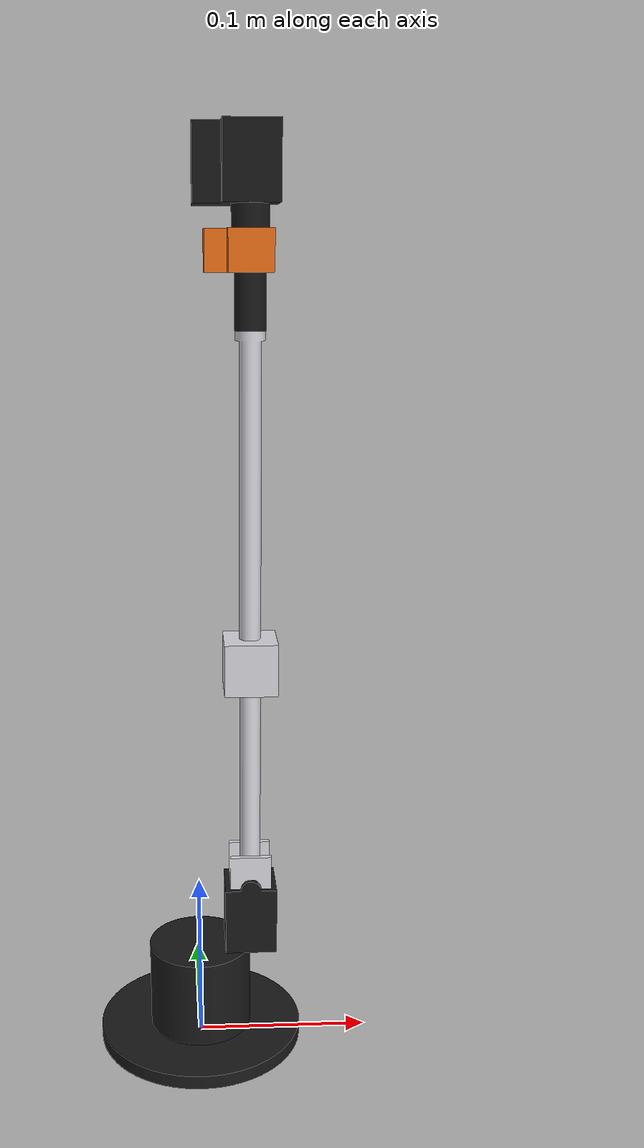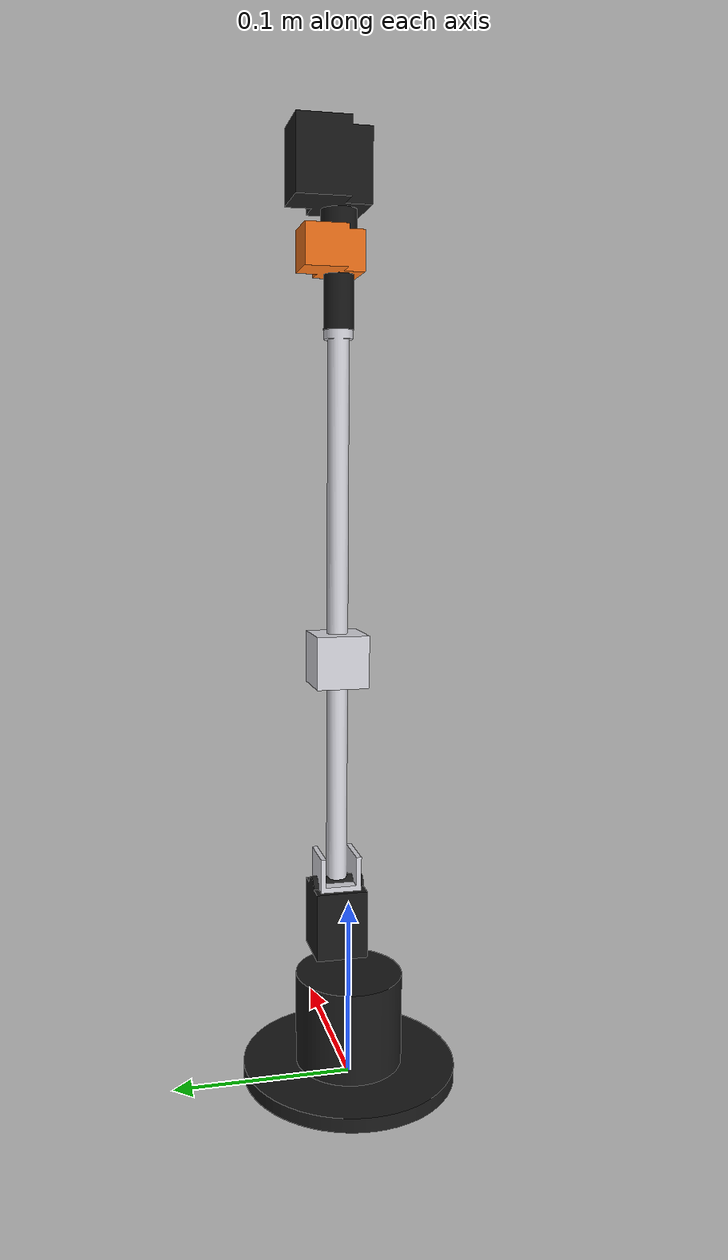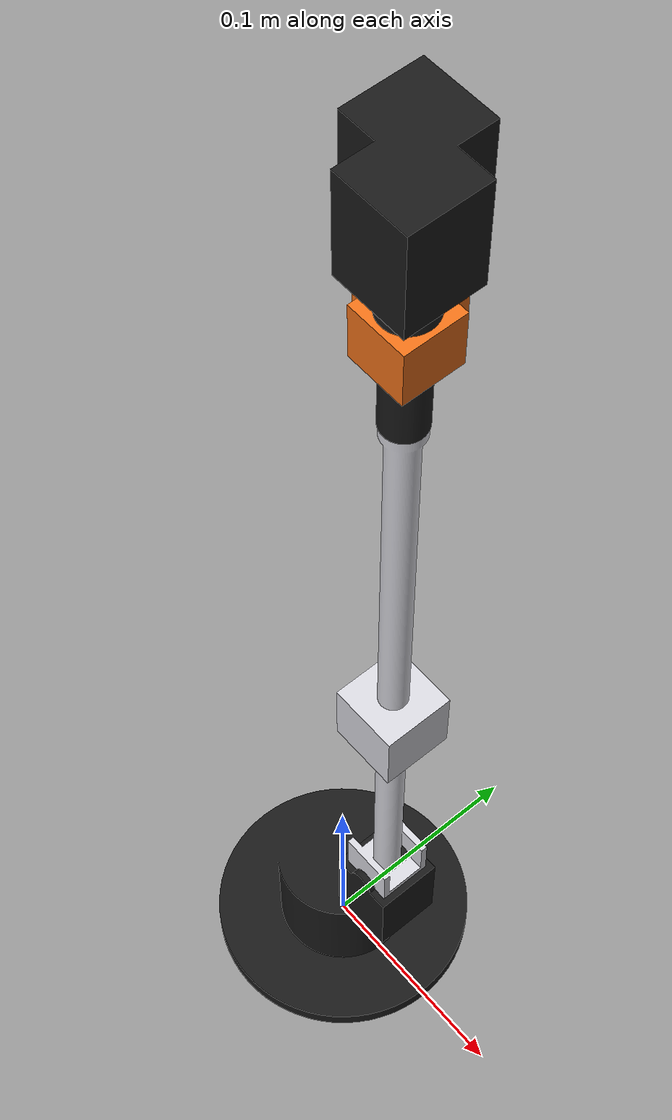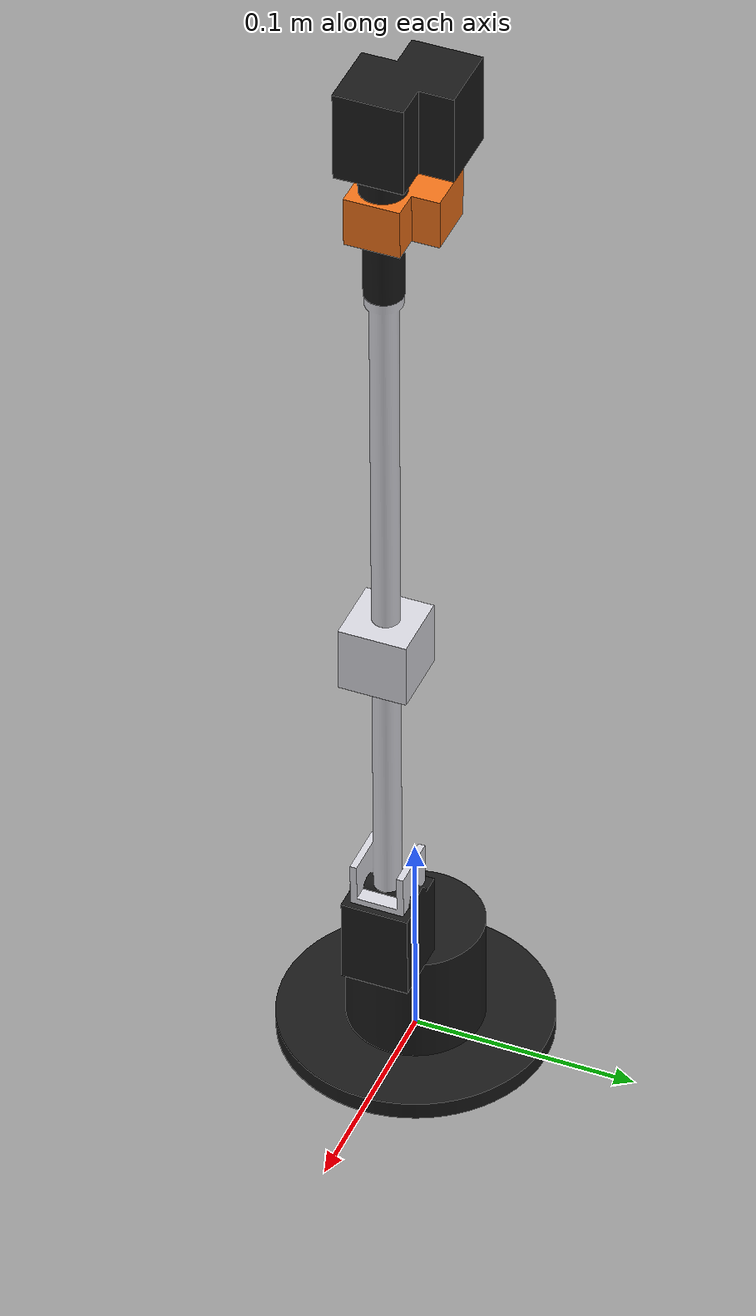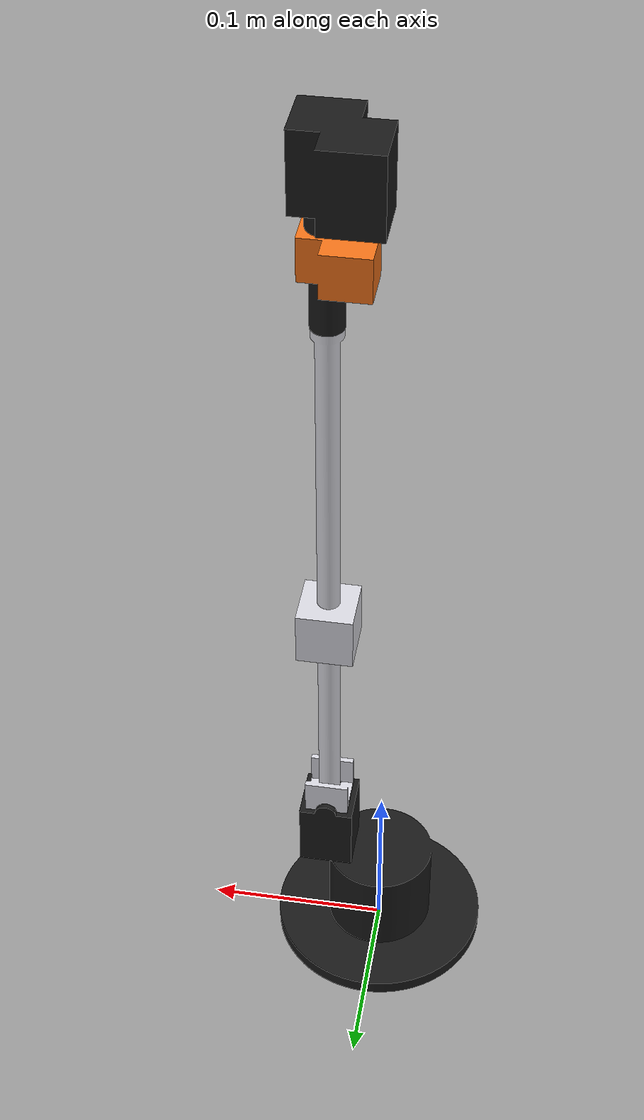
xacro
<?xml version="1.0"?>
<robot xmlns:xacro="http://www.ros.org/wiki/xacro" name="sevenbot">

  <!-- ====== AFMETINGEN (m, kg) — uit Arm7Bot.h ====== -->
  <xacro:property name="L_a"       value="0.120"/>   <!-- upper arm -->
  <xacro:property name="L_b"       value="0.040"/>   <!-- shoulder offset -->
  <xacro:property name="L_c"       value="0.1985"/>  <!-- forearm -->
  <xacro:property name="L_d"       value="0.03005"/> <!-- base radial offset -->
  <xacro:property name="L_e"       value="0.0778"/>
  <xacro:property name="L_f"       value="0.0221"/>  <!-- wrist length -->
  <xacro:property name="L_g"       value="0.012"/>   <!-- ee offset -->
  <xacro:property name="L_h"       value="0.02942"/> <!-- elbow offset -->

  <xacro:property name="base_h"    value="0.06"/>    <!-- gemeten basis hoogte (schat) -->
  <xacro:property name="base_r"    value="0.06"/>

  <xacro:property name="link_r"    value="0.012"/>   <!-- aluminium buisjes ~24mm OD -->

  <xacro:property name="m_base"    value="0.6"/>
  <xacro:property name="m_link"    value="0.15"/>
  <xacro:property name="m_wrist"   value="0.08"/>
  <xacro:property name="m_ee"      value="0.05"/>

  <xacro:property name="effort"    value="3.0"/>     <!-- digitale servo, ~3 Nm peak -->
  <xacro:property name="vel_lim"   value="3.5"/>     <!-- ~200 deg/s servo speed -->

  <!-- ====== HELPERS ====== -->
  <xacro:macro name="cyl_inertial" params="m r h">
    <inertial>
      <mass value="${m}"/>
      <inertia
        ixx="${m * (3*r*r + h*h) / 12}" iyy="${m * (3*r*r + h*h) / 12}"
        izz="${m * r*r / 2}"
        ixy="0" ixz="0" iyz="0"/>
    </inertial>
  </xacro:macro>

  <material name="alu">    <color rgba="0.85 0.85 0.88 1"/></material>
  <material name="black">  <color rgba="0.10 0.10 0.10 1"/></material>
  <material name="orange"> <color rgba="0.95 0.45 0.10 1"/></material>

  <!-- ====== WORLD anchor ====== -->
  <link name="world"/>

  <!-- Mesh helper: STL paths uit sevenbot_description/meshes/ -->
  <xacro:macro name="link_mesh" params="name color_name">
    <visual>
      <geometry><mesh filename="package://sevenbot_description/meshes/${name}_link.stl" scale="0.001 0.001 0.001"/></geometry>
      <material name="${color_name}"/>
    </visual>
    <collision>
      <geometry><mesh filename="package://sevenbot_description/meshes/${name}_link.stl" scale="0.001 0.001 0.001"/></geometry>
    </collision>
  </xacro:macro>

  <!-- ====== BASE ====== -->
  <link name="base_link">
    <xacro:link_mesh name="base" color_name="black"/>
    <xacro:cyl_inertial m="${m_base}" r="${base_r}" h="${base_h}"/>
  </link>
  <joint name="world_to_base" type="fixed">
    <parent link="world"/><child link="base_link"/>
  </joint>

  <!-- ====== JOINT 0: base yaw (servo 0) ====== -->
  <link name="shoulder_link">
    <xacro:link_mesh name="shoulder" color_name="black"/>
    <xacro:cyl_inertial m="${m_link/2}" r="${link_r}" h="${L_b}"/>
  </link>
  <joint name="joint_0" type="revolute">
    <parent link="base_link"/><child link="shoulder_link"/>
    <origin xyz="${L_d} 0 ${base_h}" rpy="0 0 0"/>
    <axis xyz="0 0 1"/>
    <limit lower="0" upper="${pi}" effort="${effort}" velocity="${vel_lim}"/>
    <dynamics damping="0.05"/>
  </joint>

  <!-- ====== JOINT 1: shoulder pitch (servo 1) ====== -->
  <link name="upper_arm_link">
    <xacro:link_mesh name="upper_arm" color_name="alu"/>
    <xacro:cyl_inertial m="${m_link}" r="${link_r}" h="${L_a}"/>
  </link>
  <joint name="joint_1" type="revolute">
    <parent link="shoulder_link"/><child link="upper_arm_link"/>
    <origin xyz="0 0 ${L_b}" rpy="0 0 0"/>
    <axis xyz="0 1 0"/>
    <limit lower="0" upper="${pi}" effort="${effort}" velocity="${vel_lim}"/>
    <dynamics damping="0.1"/>
  </joint>

  <!-- ====== JOINT 2: elbow pitch (servo 2, met +1.134464 rad mechanische offset) ====== -->
  <link name="forearm_link">
    <xacro:link_mesh name="forearm" color_name="alu"/>
    <xacro:cyl_inertial m="${m_link}" r="${link_r}" h="${L_c}"/>
  </link>
  <joint name="joint_2" type="revolute">
    <parent link="upper_arm_link"/><child link="forearm_link"/>
    <origin xyz="0 0 ${L_a}" rpy="0 0 0"/>
    <axis xyz="0 1 0"/>
    <limit lower="-1.134464" upper="2.0071287" effort="${effort}" velocity="${vel_lim}"/>
    <dynamics damping="0.1"/>
  </joint>

  <!-- ====== JOINT 3: forearm roll (servo 3) — geen geometrie verandering ====== -->
  <link name="forearm_roll_link">
    <xacro:link_mesh name="forearm_roll" color_name="black"/>
    <xacro:cyl_inertial m="${m_wrist}" r="${link_r}" h="${L_h}"/>
  </link>
  <joint name="joint_3" type="revolute">
    <parent link="forearm_link"/><child link="forearm_roll_link"/>
    <origin xyz="0 0 ${L_c}"/>
    <axis xyz="0 0 1"/>
    <limit lower="0.1745329" upper="2.9670596" effort="${effort}" velocity="${vel_lim}"/>
    <dynamics damping="0.05"/>
  </joint>

  <!-- ====== JOINT 4: wrist pitch (servo 4) ====== -->
  <link name="wrist_pitch_link">
    <xacro:link_mesh name="wrist_pitch" color_name="orange"/>
    <xacro:cyl_inertial m="${m_wrist}" r="${link_r}" h="${L_f}"/>
  </link>
  <joint name="joint_4" type="revolute">
    <parent link="forearm_roll_link"/><child link="wrist_pitch_link"/>
    <origin xyz="0 0 ${L_h}"/>
    <axis xyz="0 1 0"/>
    <limit lower="0" upper="${pi}" effort="${effort}" velocity="${vel_lim}"/>
    <dynamics damping="0.05"/>
  </joint>

  <!-- ====== JOINT 5: wrist roll-2 (servo 5) ====== -->
  <link name="wrist_roll_link">
    <xacro:link_mesh name="wrist_roll" color_name="black"/>
    <xacro:cyl_inertial m="${m_ee}" r="${link_r*0.7}" h="${L_g}"/>
  </link>
  <joint name="joint_5" type="revolute">
    <parent link="wrist_pitch_link"/><child link="wrist_roll_link"/>
    <origin xyz="0 0 ${L_f}"/>
    <axis xyz="0 0 1"/>
    <limit lower="0" upper="${pi}" effort="${effort}" velocity="${vel_lim}"/>
    <dynamics damping="0.05"/>
  </joint>

  <!-- ====== END EFFECTOR (vacuüm of gripper) ====== -->
  <link name="ee_link">
    <xacro:link_mesh name="ee" color_name="black"/>
    <xacro:cyl_inertial m="0.02" r="0.015" h="0.04"/>
  </link>
  <joint name="ee_joint" type="fixed">
    <parent link="wrist_roll_link"/><child link="ee_link"/>
    <origin xyz="0 0 ${L_g}"/>
  </joint>

</robot>
